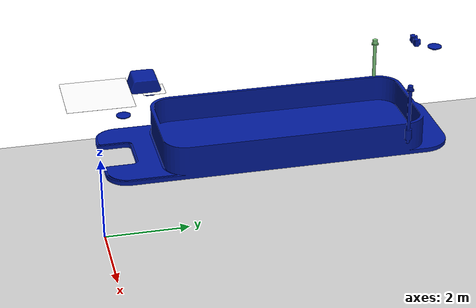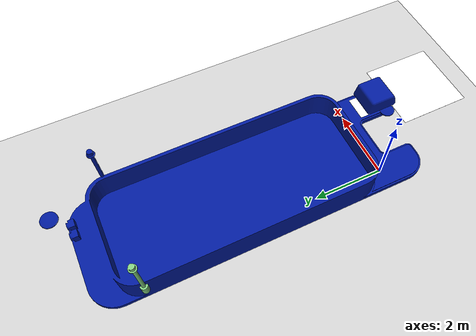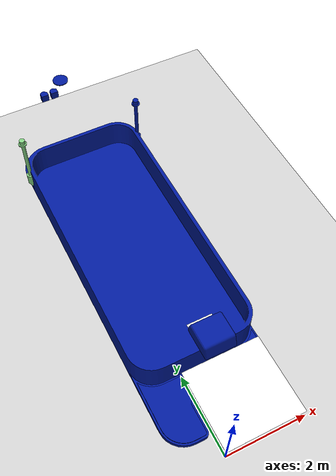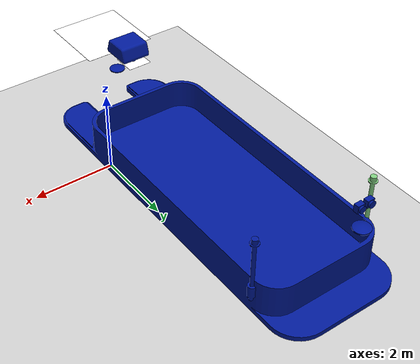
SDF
<?xml version="1.0" encoding="UTF-8"?>
<sdf version="1.9">
  <world name="aruco_barge">
    <physics type="ode">
      <max_step_size>0.004</max_step_size>
      <real_time_factor>1.0</real_time_factor>
      <real_time_update_rate>250</real_time_update_rate>
    </physics>
    <gravity>0 0 -9.8</gravity>
    <magnetic_field>6e-06 2.3e-05 -4.2e-05</magnetic_field>
    <atmosphere type="adiabatic"/>
    <scene>
      <grid>false</grid>
      <ambient>0.4 0.4 0.4 1</ambient>
      <background>0.7 0.7 0.7 1</background>
      <shadows>true</shadows>
    </scene>

    <model name="ground_plane">
      <static>true</static>
      <link name="link">
        <collision name="collision">
          <geometry>
            <plane>
              <normal>0 0 1</normal>
              <size>1 1</size>
            </plane>
          </geometry>
          <surface>
            <friction>
              <ode/>
            </friction>
            <bounce/>
            <contact/>
          </surface>
        </collision>
        <visual name="visual">
          <geometry>
            <plane>
              <normal>0 0 1</normal>
              <size>100 100</size>
            </plane>
          </geometry>
          <material>
            <ambient>0.8 0.8 0.8 1</ambient>
            <diffuse>0.8 0.8 0.8 1</diffuse>
            <specular>0.8 0.8 0.8 1</specular>
          </material>
        </visual>
        <pose>0 0 0 0 -0 0</pose>
        <inertial>
          <pose>0 0 0 0 -0 0</pose>
          <mass>1</mass>
          <inertia>
            <ixx>1</ixx>
            <ixy>0</ixy>
            <ixz>0</ixz>
            <iyy>1</iyy>
            <iyz>0</iyz>
            <izz>1</izz>
          </inertia>
        </inertial>
        <enable_wind>false</enable_wind>
      </link>
      <pose>0 0 0 0 -0 0</pose>
      <self_collide>false</self_collide>
    </model>

    <light name="sunUTC" type="directional">
      <pose>0 0 500 0 -0 0</pose>
      <cast_shadows>true</cast_shadows>
      <intensity>1</intensity>
      <direction>0.001 0.625 -0.78</direction>
      <diffuse>0.904 0.904 0.904 1</diffuse>
      <specular>0.271 0.271 0.271 1</specular>
      <attenuation>
        <range>2000</range>
        <linear>0</linear>
        <constant>1</constant>
        <quadratic>0</quadratic>
      </attenuation>
      <spot>
        <inner_angle>0</inner_angle>
        <outer_angle>0</outer_angle>
        <falloff>0</falloff>
      </spot>
    </light>
    <spherical_coordinates>
      <surface_model>EARTH_WGS84</surface_model>
      <world_frame_orientation>ENU</world_frame_orientation>
      <latitude_deg>47.397971057728974</latitude_deg>
      <longitude_deg> 8.546163739800146</longitude_deg>
      <elevation>0</elevation>
    </spherical_coordinates>

    <include>
      <pose>0 0 2 0 0 0</pose>
      <uri>model://pohang_barge</uri>
    </include>

  </world>
</sdf>

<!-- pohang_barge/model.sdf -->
<sdf version="1.11">
  <model name="pohang_barge_v2">
    <link name="base_link">
      <inertial>
        <mass>0.0001</mass>
        <inertia>
          <ixx>1e-09</ixx>
          <ixy>0</ixy>
          <ixz>0</ixz>
          <iyy>1e-09</iyy>
          <iyz>0</iyz>
          <izz>1e-09</izz>
        </inertia>
      </inertial>
    </link>
    <link name="rigid_group_1_1">
      <inertial>
        <mass>10000</mass>
        <inertia>
          <ixx>10000</ixx>
          <iyy>10000</iyy>
          <izz>10000</izz>
        </inertia>
      </inertial>

      <!-- body1 -->
      <visual name="rigid_group_1_1__body1_visual">
        <geometry>
          <mesh>
            <scale>0.01 0.01 0.01</scale>
            <uri>meshes/rigid_group_1_1/body1_visual.obj</uri>
          </mesh>
        </geometry>
        <material>
          <ambient>0.0 0.1 0.3 1</ambient>
          <diffuse>0.0 0.1 0.6 1</diffuse>
          <specular>0.2 0.2 0.2 1</specular>
          <emissive>0 0 0 1</emissive>
        </material>
      </visual>

      <!-- body2 -->
      <visual name="rigid_group_1_1__body2_visual">
        <geometry>
          <mesh>
            <scale>0.01 0.01 0.01</scale>
            <uri>meshes/rigid_group_1_1/body2_visual.obj</uri>
          </mesh>
        </geometry>
        <material>
          <ambient>0.0 0.1 0.3 1</ambient>
          <diffuse>0.0 0.1 0.6 1</diffuse>
          <specular>0.2 0.2 0.2 1</specular>
          <emissive>0 0 0 1</emissive>
        </material>
      </visual>

      <!-- body3 -->
      <visual name="rigid_group_1_1__body3_visual">
        <geometry>
          <mesh>
            <scale>0.01 0.01 0.01</scale>
            <uri>meshes/rigid_group_1_1/body3_visual.obj</uri>
          </mesh>
        </geometry>
        <material>
          <ambient>0.0 0.1 0.3 1</ambient>
          <diffuse>0.0 0.1 0.6 1</diffuse>
          <specular>0.2 0.2 0.2 1</specular>
          <emissive>0 0 0 1</emissive>
        </material>
      </visual>

      <!-- body4 -->
      <visual name="rigid_group_1_1__body4_visual">
        <geometry>
          <mesh>
            <scale>0.01 0.01 0.01</scale>
            <uri>meshes/rigid_group_1_1/body4_visual.obj</uri>
          </mesh>
        </geometry>
        <material>
          <ambient>0.0 0.1 0.3 1</ambient>
          <diffuse>0.0 0.1 0.6 1</diffuse>
          <specular>0.2 0.2 0.2 1</specular>
          <emissive>0 0 0 1</emissive>
        </material>
      </visual>

      <!-- body5 -->
      <visual name="rigid_group_1_1__body5_visual">
        <geometry>
          <mesh>
            <scale>0.01 0.01 0.01</scale>
            <uri>meshes/rigid_group_1_1/body5_visual.obj</uri>
          </mesh>
        </geometry>
        <material>
          <ambient>0.0 0.1 0.3 1</ambient>
          <diffuse>0.0 0.1 0.6 1</diffuse>
          <specular>0.2 0.2 0.2 1</specular>
          <emissive>0 0 0 1</emissive>
        </material>
      </visual>

      <!-- body6 -->
      <visual name="rigid_group_1_1__body6_visual">
        <geometry>
          <mesh>
            <scale>0.01 0.01 0.01</scale>
            <uri>meshes/rigid_group_1_1/body6_visual.obj</uri>
          </mesh>
        </geometry>
        <material>
          <ambient>0.0 0.1 0.3 1</ambient>
          <diffuse>0.0 0.1 0.6 1</diffuse>
          <specular>0.2 0.2 0.2 1</specular>
          <emissive>0 0 0 1</emissive>
        </material>
      </visual>

      <!-- body7 -->
      <visual name="rigid_group_1_1__body7_visual">
        <geometry>
          <mesh>
            <scale>0.01 0.01 0.01</scale>
            <uri>meshes/rigid_group_1_1/body7_visual.obj</uri>
          </mesh>
        </geometry>
          <material>
            <ambient>0.8 0.8 0.8 1</ambient>
            <diffuse>0.5 0.8 0.5 1</diffuse>
            <specular>0.8 0.8 0.8 1</specular>
          </material>
      </visual>

      <!-- body8 -->
      <visual name="rigid_group_1_1__body8_visual">
        <geometry>
          <mesh>
            <scale>0.01 0.01 0.01</scale>
            <uri>meshes/rigid_group_1_1/body8_visual.obj</uri>
          </mesh>
        </geometry>
        <material>
          <ambient>0.0 0.1 0.3 1</ambient>
          <diffuse>0.0 0.1 0.6 1</diffuse>
          <specular>0.2 0.2 0.2 1</specular>
          <emissive>0 0 0 1</emissive>
        </material>
      </visual>

      <!-- body9 -->
      <visual name="rigid_group_1_1__body9_visual">
        <geometry>
          <mesh>
            <scale>0.01 0.01 0.01</scale>
            <uri>meshes/rigid_group_1_1/body9_visual.obj</uri>
          </mesh>
        </geometry>
        <material>
          <ambient>0.0 0.1 0.3 1</ambient>
          <diffuse>0.0 0.1 0.6 1</diffuse>
          <specular>0.2 0.2 0.2 1</specular>
          <emissive>0 0 0 1</emissive>
        </material>
      </visual>

      <!-- collisions unchanged -->
      <collision name="rigid_group_1_1__body1_collision">
        <pose relative_to="__model__">0.0 0.0 -0.1 -0.0 -1.5707963267948966 0</pose>
        <geometry>
          <box>
            <size>1.2 7.9 2.6</size>
          </box>
        </geometry>
      </collision>
      <collision name="rigid_group_1_1__body2_collision">
        <pose relative_to="__model__">-0.07405320373339386 -5.751766144025233e-11 -0.9299048710903611 3.1415926528421667 -1.3089969390061658 -7.22151965131561e-10</pose>
        <geometry>
          <box>
            <size>0.7995119524175354 8.0 0.5187596816905417</size>
          </box>
        </geometry>
      </collision>
      <collision name="rigid_group_1_1__body3_collision">
        <pose relative_to="__model__">0.8259467962666065 -5.7517661440252314e-11 -0.9299048710903611 3.1415926528421667 -1.3089969390061658 -7.221519651315611e-10</pose>
        <geometry>
          <box>
            <size>0.7995119524175354 8.0 0.5187596816905415</size>
          </box>
        </geometry>
      </collision>
      <collision name="rigid_group_1_1__body4_collision">
        <pose relative_to="__model__">1.3 -2.150000000000002 0.5000000000000004 -0.0 -1.5707963267948966 0</pose>
        <geometry>
          <box>
            <size>2.0 0.1 0.1</size>
          </box>
        </geometry>
      </collision>
      <collision name="rigid_group_1_1__body5_collision">
        <pose relative_to="__model__">-1.3 2.65 0.5 -0.0 -1.5707963267948966 0</pose>
        <geometry>
          <box>
            <size>2.0 0.1 0.1</size>
          </box>
        </geometry>
      </collision>
      <collision name="rigid_group_1_1__body6_collision">
        <pose relative_to="__model__">-1.3000000000000012 -2.15 0.49999999999999983 -0.0 -1.5707963267948966 0</pose>
        <geometry>
          <box>
            <size>2.0000000000000004 0.1 0.10000000000000014</size>
          </box>
        </geometry>
      </collision>
      <collision name="rigid_group_1_1__body7_collision">
        <pose relative_to="__model__">0.0 0.65 1.5 -0.0 -1.5707963267948966 0</pose>
        <geometry>
          <box>
            <size>0.2 6.6 2.6</size>
          </box>
        </geometry>
      </collision>
      <collision name="rigid_group_1_1__body8_collision">
        <pose relative_to="__model__">1.3 2.65 0.5 -0.0 -1.5707963267948966 0</pose>
        <geometry>
          <box>
            <size>2.0 0.1 0.1</size>
          </box>
        </geometry>
      </collision>
      <collision name="rigid_group_1_1__body9_collision">
        <pose relative_to="__model__">-0.9740532037333941 -5.7517661440252295e-11 -0.9299048710903612 3.1415926528421667 -1.3089969390061658 -7.221519651315611e-10</pose>
        <geometry>
          <box>
            <size>0.7995119524175353 8.0 0.5187596816905414</size>
          </box>
        </geometry>
      </collision>
    </link>

    <plugin
      filename="libBargeController.so"
      name="custom::BargeController">
      <link_name>rigid_group_1_1</link_name>
    </plugin>

    <!-- ArucoTag model for good practice -->
    <include>
      <uri>model://arucotag_0</uri>
      <name>arucotag_0</name>
      <pose>0 1.25 1.63 0 0 0</pose>
    </include>

    <include>
      <uri>model://arucotag_19</uri>
      <name>arucotag_19</name>
      <pose>0 0 1.63 0 0 0</pose>
    </include>

    <!-- Fixed joint -->
    <joint name="fixed_joint_to_arucotag_0" type="fixed">
      <parent>base_link</parent>   <!-- A link in the parent model -->
      <child>arucotag_0::base</child> <!-- Link inside child model -->
    </joint>

    <joint name="fixed_joint_to_arucotag_19" type="fixed">
      <parent>base_link</parent>   <!-- A link in the parent model -->
      <child>arucotag_19::base</child> <!-- Link inside child model -->
    </joint>

    <!-- Pose publisher -->
    <plugin
      filename="gz-sim-odometry-publisher-system"
      name="gz::sim::systems::OdometryPublisher">
      <odom_publish_frequency>50</odom_publish_frequency>
      <dimensions>3</dimensions>
      <odom_topic>barge/odom</odom_topic>
      <odom_covariance_topic>barge/odom_covariance</odom_covariance_topic>
    </plugin>

    <plugin
    	filename="gz-sim-pose-publisher-system"
    	name="gz::sim::systems::PosePublisher">
    	<publish_link_pose>true</publish_link_pose>
    	<publish_collision_pose>false</publish_collision_pose>
      	<publish_visual_pose>false</publish_visual_pose>
      	<publish_nested_model_pose>false</publish_nested_model_pose>
    </plugin>

    <!-- GPS tracking the barge -->
    <sensor name="navsat_sensor" type="navsat">
      <gz_frame_id>base_link</gz_frame_id>
      <always_on>1</always_on>
      <update_rate>30</update_rate>
    </sensor>

    <joint name="base_link_joint" type="fixed">
      <parent>base_link</parent>
      <child>rigid_group_1_1</child>
      <axis/>
    </joint>
  </model>
</sdf>

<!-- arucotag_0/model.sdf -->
<sdf version='1.9'>
  <model name='arucotag_0'>
    <static>true</static>
    <pose>0 0 0.001 0 0 0</pose>
    <link name='base'>
      <visual name='base_visual'>
        <geometry>
          <plane>
            <normal>0 0 1</normal>
            <size>0.5 0.5</size>
          </plane>
        </geometry>
        <material>
          <diffuse>1 1 1 1</diffuse>
          <specular>0.4 0.4 0.4 1</specular>
          <pbr>
            <metal>
              <albedo_map>model://arucotag_0/4x4_1000-0.png</albedo_map>
            </metal>
          </pbr>
        </material>
      </visual>
    </link>
  </model>
</sdf>

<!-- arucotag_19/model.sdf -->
<sdf version='1.9'>
  <model name='arucotag'>
    <static>true</static>
    <pose>0 0 0.001 0 0 0</pose>
    <link name='base'>
      <visual name='base_visual'>
        <geometry>
          <plane>
            <normal>0 0 1</normal>
            <size>1.5 1.5</size>
          </plane>
        </geometry>
        <material>
          <diffuse>1 1 1 1</diffuse>
          <specular>0.4 0.4 0.4 1</specular>
          <pbr>
            <metal>
              <albedo_map>model://arucotag_19/6x6_1000-19.png</albedo_map>
            </metal>
          </pbr>
        </material>
      </visual>
    </link>
  </model>
</sdf>
